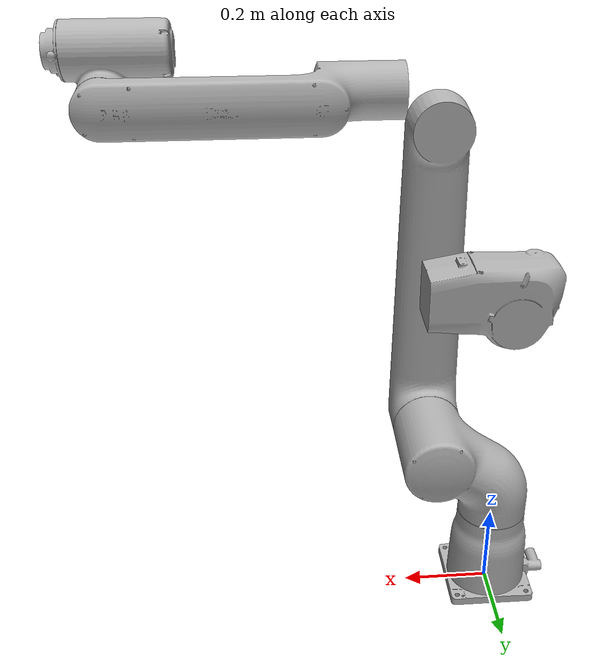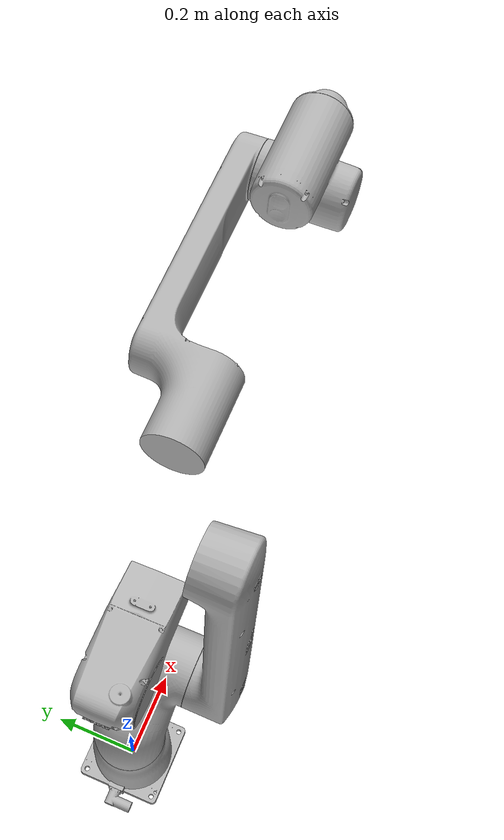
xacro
<?xml version="1.0" ?>
<robot name="CRB15000_10kg-152" xmlns:xacro="http://www.ros.org/wiki/xacro">

<xacro:include filename="$(find CRB15000_10kg-152_description)/urdf/materials.xacro" />
<xacro:include filename="$(find CRB15000_10kg-152_description)/urdf/CRB15000_10kg-152.trans" />
<xacro:include filename="$(find CRB15000_10kg-152_description)/urdf/CRB15000_10kg-152.gazebo" />
<link name="base_link">
  <inertial>
    <origin xyz="-0.0011656606666003504 -0.00011127786600189595 0.0985691713362607" rpy="0 0 0"/>
    <mass value="43.321834194728716"/>
    <inertia ixx="0.254824" iyy="0.26074" izz="0.191484" ixy="-0.000567" iyz="-0.000372" ixz="-0.003894"/>
  </inertial>
  <visual>
    <origin xyz="0 0 0" rpy="0 0 0"/>
    <geometry>
      <mesh filename="package://CRB15000_10kg-152_description/meshes/base_link.stl" scale="0.001 0.001 0.001"/>
    </geometry>
    <material name="silver"/>
  </visual>
  <collision>
    <origin xyz="0 0 0" rpy="0 0 0"/>
    <geometry>
      <mesh filename="package://CRB15000_10kg-152_description/meshes/base_link.stl" scale="0.001 0.001 0.001"/>
    </geometry>
  </collision>
</link>

<link name="link_1_1">
  <inertial>
    <origin xyz="0.08775396256753097 0.0028936166670680574 0.13782832227067018" rpy="0 0 0"/>
    <mass value="62.519803241843114"/>
    <inertia ixx="0.432284" iyy="0.648762" izz="0.530762" ixy="-0.011248" iyz="-0.008525" ixz="-0.212957"/>
  </inertial>
  <visual>
    <origin xyz="0.0 -0.0 -0.215" rpy="0 0 0"/>
    <geometry>
      <mesh filename="package://CRB15000_10kg-152_description/meshes/link_1_1.stl" scale="0.001 0.001 0.001"/>
    </geometry>
    <material name="silver"/>
  </visual>
  <collision>
    <origin xyz="0.0 -0.0 -0.215" rpy="0 0 0"/>
    <geometry>
      <mesh filename="package://CRB15000_10kg-152_description/meshes/link_1_1.stl" scale="0.001 0.001 0.001"/>
    </geometry>
  </collision>
</link>

<link name="link_2_1">
  <inertial>
    <origin xyz="2.8584459371705506e-07 -0.0543214282069112 0.31993968763231195" rpy="0 0 0"/>
    <mass value="70.93354798589783"/>
    <inertia ixx="4.564667" iyy="4.624738" izz="0.149368" ixy="0.0" iyz="-0.067787" ixz="1e-06"/>
  </inertial>
  <visual>
    <origin xyz="-0.15 0.09615 -0.400014" rpy="0 0 0"/>
    <geometry>
      <mesh filename="package://CRB15000_10kg-152_description/meshes/link_2_1.stl" scale="0.001 0.001 0.001"/>
    </geometry>
    <material name="silver"/>
  </visual>
  <collision>
    <origin xyz="-0.15 0.09615 -0.400014" rpy="0 0 0"/>
    <geometry>
      <mesh filename="package://CRB15000_10kg-152_description/meshes/link_2_1.stl" scale="0.001 0.001 0.001"/>
    </geometry>
  </collision>
</link>

<link name="link_3_1">
  <inertial>
    <origin xyz="0.012899148223606716 0.09273704088636267 0.024906939924447702" rpy="0 0 0"/>
    <mass value="26.381731962599385"/>
    <inertia ixx="0.135785" iyy="0.109627" izz="0.102204" ixy="0.002633" iyz="0.005085" ixz="-0.02496"/>
  </inertial>
  <visual>
    <origin xyz="-0.15 0.085 -1.107" rpy="0 0 0"/>
    <geometry>
      <mesh filename="package://CRB15000_10kg-152_description/meshes/link_3_1.stl" scale="0.001 0.001 0.001"/>
    </geometry>
    <material name="silver"/>
  </visual>
  <collision>
    <origin xyz="-0.15 0.085 -1.107" rpy="0 0 0"/>
    <geometry>
      <mesh filename="package://CRB15000_10kg-152_description/meshes/link_3_1.stl" scale="0.001 0.001 0.001"/>
    </geometry>
  </collision>
</link>

<link name="link_4_1">
  <inertial>
    <origin xyz="0.24242614990615624 0.06277136599398273 6.636508358415227e-07" rpy="0 0 0"/>
    <mass value="32.073735291819936"/>
    <inertia ixx="0.109076" iyy="0.893804" izz="0.956571" ixy="-0.193211" iyz="2e-06" ixz="1.3e-05"/>
  </inertial>
  <visual>
    <origin xyz="-0.246 0.0 -1.217" rpy="0 0 0"/>
    <geometry>
      <mesh filename="package://CRB15000_10kg-152_description/meshes/link_4_1.stl" scale="0.001 0.001 0.001"/>
    </geometry>
    <material name="silver"/>
  </visual>
  <collision>
    <origin xyz="-0.246 0.0 -1.217" rpy="0 0 0"/>
    <geometry>
      <mesh filename="package://CRB15000_10kg-152_description/meshes/link_4_1.stl" scale="0.001 0.001 0.001"/>
    </geometry>
  </collision>
</link>

<link name="link_5_1">
  <inertial>
    <origin xyz="-0.01459775541258479 -0.07956678438355705 0.04275435393134619" rpy="0 0 0"/>
    <mass value="23.637549891653943"/>
    <inertia ixx="0.089959" iyy="0.106455" izz="0.085161" ixy="0.001414" iyz="-0.004125" ixz="0.012973"/>
  </inertial>
  <visual>
    <origin xyz="-0.786883 -0.0755 -1.217" rpy="0 0 0"/>
    <geometry>
      <mesh filename="package://CRB15000_10kg-152_description/meshes/link_5_1.stl" scale="0.001 0.001 0.001"/>
    </geometry>
    <material name="silver"/>
  </visual>
  <collision>
    <origin xyz="-0.786883 -0.0755 -1.217" rpy="0 0 0"/>
    <geometry>
      <mesh filename="package://CRB15000_10kg-152_description/meshes/link_5_1.stl" scale="0.001 0.001 0.001"/>
    </geometry>
  </collision>
</link>

<link name="link_6_1">
  <inertial>
    <origin xyz="0.013150737690741043 0.00023981661745750953 -0.00034190626182106776" rpy="0 0 0"/>
    <mass value="1.1500367477208804"/>
    <inertia ixx="0.001012" iyy="0.000597" izz="0.0006" ixy="-1e-06" iyz="-5e-06" ixz="1e-06"/>
  </inertial>
  <visual>
    <origin xyz="-0.855 -0.0 -1.297" rpy="0 0 0"/>
    <geometry>
      <mesh filename="package://CRB15000_10kg-152_description/meshes/link_6_1.stl" scale="0.001 0.001 0.001"/>
    </geometry>
    <material name="silver"/>
  </visual>
  <collision>
    <origin xyz="-0.855 -0.0 -1.297" rpy="0 0 0"/>
    <geometry>
      <mesh filename="package://CRB15000_10kg-152_description/meshes/link_6_1.stl" scale="0.001 0.001 0.001"/>
    </geometry>
  </collision>
</link>

<joint name="j1" type="continuous">
  <origin xyz="0.0 0.0 0.215" rpy="0 0 0"/>
  <parent link="base_link"/>
  <child link="link_1_1"/>
  <axis xyz="0.0 0.0 -1.0"/>
</joint>

<joint name="j2" type="continuous">
  <origin xyz="0.15 -0.09615 0.185014" rpy="0 0 0"/>
  <parent link="link_1_1"/>
  <child link="link_2_1"/>
  <axis xyz="0.0 1.0 0.0"/>
</joint>

<joint name="j3" type="continuous">
  <origin xyz="0.0 0.01115 0.706986" rpy="0 0 0"/>
  <parent link="link_2_1"/>
  <child link="link_3_1"/>
  <axis xyz="0.0 -1.0 0.0"/>
</joint>

<joint name="j4" type="continuous">
  <origin xyz="0.096 0.085 0.11" rpy="0 0 0"/>
  <parent link="link_3_1"/>
  <child link="link_4_1"/>
  <axis xyz="1.0 0.0 0.0"/>
</joint>

<joint name="j5" type="continuous">
  <origin xyz="0.540883 0.0755 0.0" rpy="0 0 0"/>
  <parent link="link_4_1"/>
  <child link="link_5_1"/>
  <axis xyz="0.0 -1.0 0.0"/>
</joint>

<joint name="j6" type="continuous">
  <origin xyz="0.068117 -0.0755 0.08" rpy="0 0 0"/>
  <parent link="link_5_1"/>
  <child link="link_6_1"/>
  <axis xyz="1.0 0.0 0.0"/>
</joint>

</robot>

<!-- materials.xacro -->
<robot name="CRB15000_10kg-152" xmlns:xacro="http://www.ros.org/wiki/xacro" >

<material name="silver">
  <color rgba="0.700 0.700 0.700 1.000"/>
</material>

</robot>
